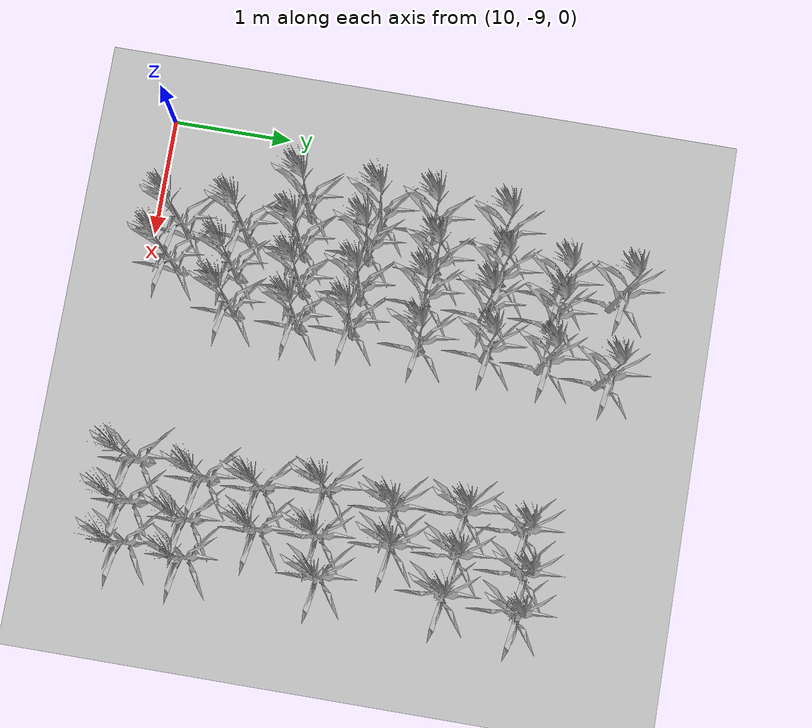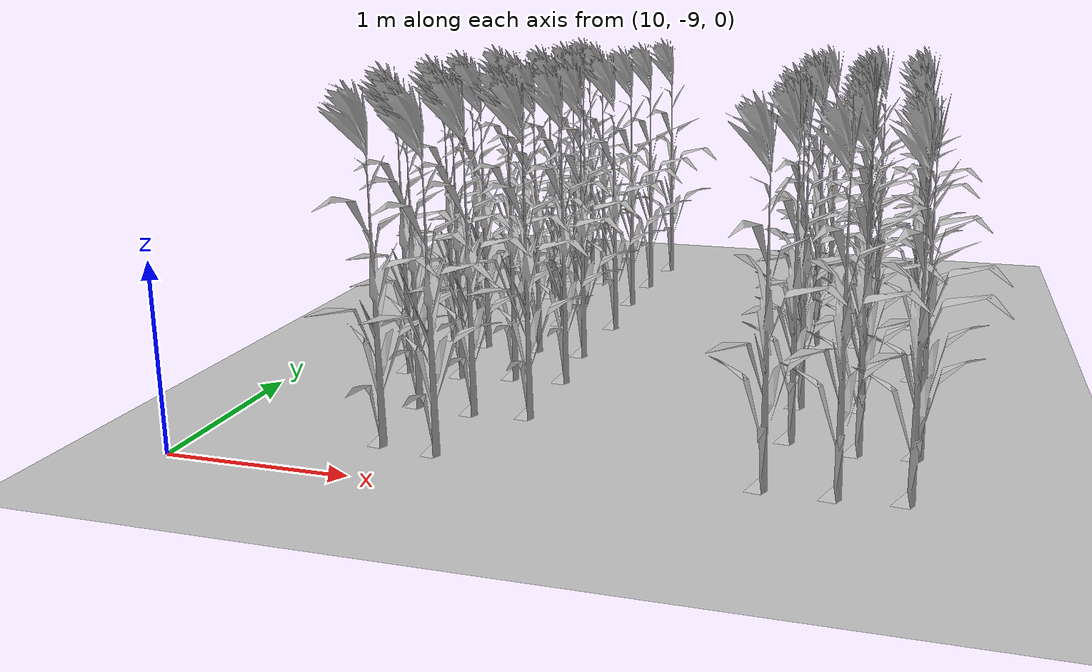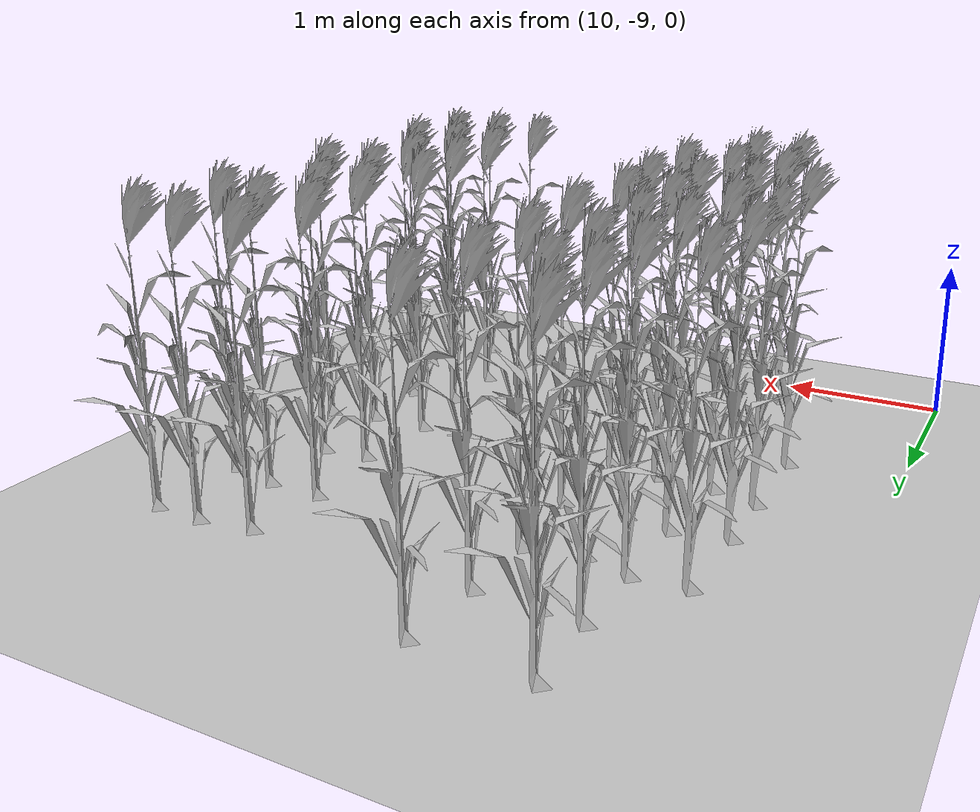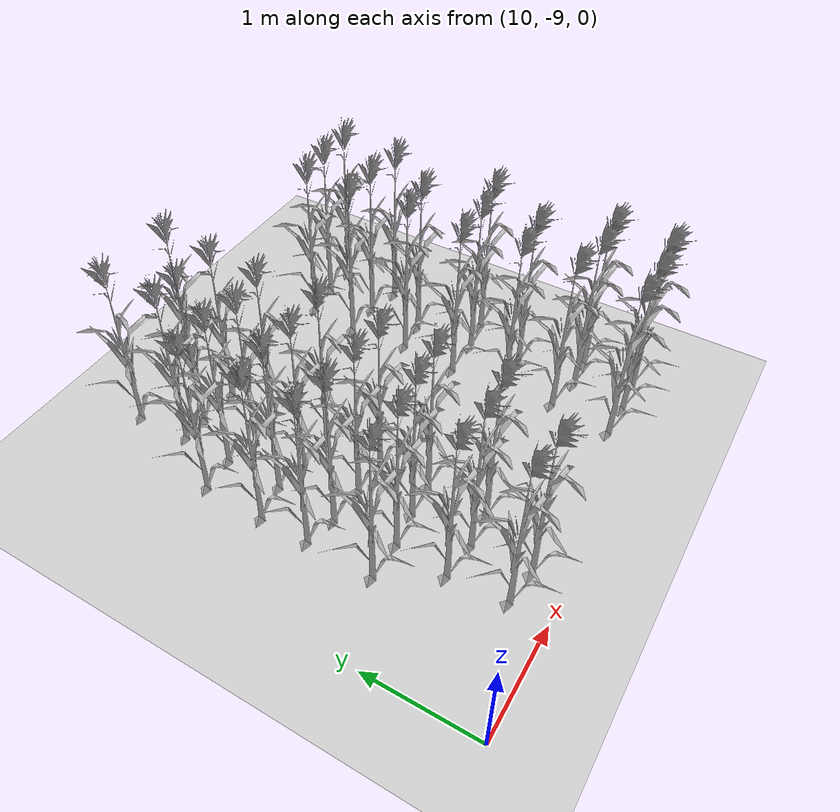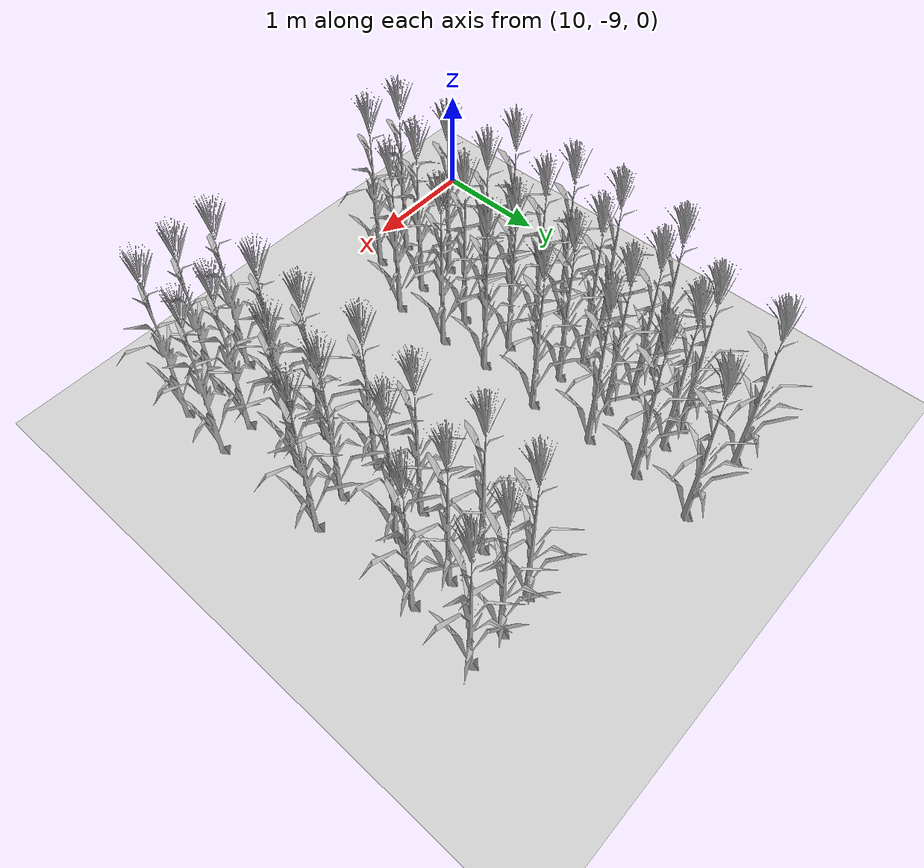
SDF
<sdf version="1.7">
 <world name="farmland_world">
  <model name="ground_plane">
   <static>1</static>
   <link name="link">
    <collision name="collision">
     <geometry><plane><normal>0 0 1</normal><size>40.0 40.0</size></plane></geometry>
     <surface><friction><ode><mu>100</mu><mu2>50</mu2></ode></friction></surface>
    </collision>
    <visual name="visual">
     <cast_shadows>0</cast_shadows>
     <geometry><plane><normal>0 0 1</normal><size>40.0 40.0</size></plane></geometry>
     <material>
      <script><uri>file://media/materials/scripts/gazebo.material</uri><name>Gazebo/Grey</name></script>
     </material>
    </visual>
   </link>
  </model>
  <model name="tree_3_1271">
   <static>1</static>
   <link name="link">
    <collision name="collision">
     <geometry><mesh><uri>model://Corn_low_poly/corn.obj</uri><scale>1 1 1</scale></mesh></geometry>
     <surface><friction><ode><mu>100</mu><mu2>50</mu2></ode></friction></surface>
    </collision>
    <visual name="visual">
     <geometry><mesh><uri>model://Corn_low_poly/corn.obj</uri><scale>1 1 1</scale></mesh></geometry>
    </visual>
   </link>
   <pose>10.715973302232335 -6.062941557962173 0 0 0 0</pose>
  </model>
  <model name="tree_3_1272">
   <static>1</static>
   <link name="link">
    <collision name="collision">
     <geometry><mesh><uri>model://Corn_low_poly/corn.obj</uri><scale>1 1 1</scale></mesh></geometry>
     <surface><friction><ode><mu>100</mu><mu2>50</mu2></ode></friction></surface>
    </collision>
    <visual name="visual">
     <geometry><mesh><uri>model://Corn_low_poly/corn.obj</uri><scale>1 1 1</scale></mesh></geometry>
    </visual>
   </link>
   <pose>10.696346135817876 -6.631069493272226 0 0 0 0</pose>
  </model>
  <model name="tree_3_1273">
   <static>1</static>
   <link name="link">
    <collision name="collision">
     <geometry><mesh><uri>model://Corn_low_poly/corn.obj</uri><scale>1 1 1</scale></mesh></geometry>
     <surface><friction><ode><mu>100</mu><mu2>50</mu2></ode></friction></surface>
    </collision>
    <visual name="visual">
     <geometry><mesh><uri>model://Corn_low_poly/corn.obj</uri><scale>1 1 1</scale></mesh></geometry>
    </visual>
   </link>
   <pose>10.699100713637986 -7.07209844592708 0 0 0 0</pose>
  </model>
  <model name="tree_3_1274">
   <static>1</static>
   <link name="link">
    <collision name="collision">
     <geometry><mesh><uri>model://Corn_low_poly/corn.obj</uri><scale>1 1 1</scale></mesh></geometry>
     <surface><friction><ode><mu>100</mu><mu2>50</mu2></ode></friction></surface>
    </collision>
    <visual name="visual">
     <geometry><mesh><uri>model://Corn_low_poly/corn.obj</uri><scale>1 1 1</scale></mesh></geometry>
    </visual>
   </link>
   <pose>10.687475974927512 -7.6755239275403495 0 0 0 0</pose>
  </model>
  <model name="tree_3_1295">
   <static>1</static>
   <link name="link">
    <collision name="collision">
     <geometry><mesh><uri>model://Corn_low_poly/corn.obj</uri><scale>1 1 1</scale></mesh></geometry>
     <surface><friction><ode><mu>100</mu><mu2>50</mu2></ode></friction></surface>
    </collision>
    <visual name="visual">
     <geometry><mesh><uri>model://Corn_low_poly/corn.obj</uri><scale>1 1 1</scale></mesh></geometry>
    </visual>
   </link>
   <pose>11.02900341646961 -5.060245639129506 0 0 0 0</pose>
  </model>
  <model name="tree_3_1296">
   <static>1</static>
   <link name="link">
    <collision name="collision">
     <geometry><mesh><uri>model://Corn_low_poly/corn.obj</uri><scale>1 1 1</scale></mesh></geometry>
     <surface><friction><ode><mu>100</mu><mu2>50</mu2></ode></friction></surface>
    </collision>
    <visual name="visual">
     <geometry><mesh><uri>model://Corn_low_poly/corn.obj</uri><scale>1 1 1</scale></mesh></geometry>
    </visual>
   </link>
   <pose>11.047884732187825 -5.556681931188784 0 0 0 0</pose>
  </model>
  <model name="tree_3_1297">
   <static>1</static>
   <link name="link">
    <collision name="collision">
     <geometry><mesh><uri>model://Corn_low_poly/corn.obj</uri><scale>1 1 1</scale></mesh></geometry>
     <surface><friction><ode><mu>100</mu><mu2>50</mu2></ode></friction></surface>
    </collision>
    <visual name="visual">
     <geometry><mesh><uri>model://Corn_low_poly/corn.obj</uri><scale>1 1 1</scale></mesh></geometry>
    </visual>
   </link>
   <pose>11.030979815447965 -6.036957130357867 0 0 0 0</pose>
  </model>
  <model name="tree_3_1298">
   <static>1</static>
   <link name="link">
    <collision name="collision">
     <geometry><mesh><uri>model://Corn_low_poly/corn.obj</uri><scale>1 1 1</scale></mesh></geometry>
     <surface><friction><ode><mu>100</mu><mu2>50</mu2></ode></friction></surface>
    </collision>
    <visual name="visual">
     <geometry><mesh><uri>model://Corn_low_poly/corn.obj</uri><scale>1 1 1</scale></mesh></geometry>
    </visual>
   </link>
   <pose>11.019836505396405 -6.566881701549886 0 0 0 0</pose>
  </model>
  <model name="tree_3_1299">
   <static>1</static>
   <link name="link">
    <collision name="collision">
     <geometry><mesh><uri>model://Corn_low_poly/corn.obj</uri><scale>1 1 1</scale></mesh></geometry>
     <surface><friction><ode><mu>100</mu><mu2>50</mu2></ode></friction></surface>
    </collision>
    <visual name="visual">
     <geometry><mesh><uri>model://Corn_low_poly/corn.obj</uri><scale>1 1 1</scale></mesh></geometry>
    </visual>
   </link>
   <pose>10.972054417032606 -7.138747380279613 0 0 0 0</pose>
  </model>
  <model name="tree_3_1300">
   <static>1</static>
   <link name="link">
    <collision name="collision">
     <geometry><mesh><uri>model://Corn_low_poly/corn.obj</uri><scale>1 1 1</scale></mesh></geometry>
     <surface><friction><ode><mu>100</mu><mu2>50</mu2></ode></friction></surface>
    </collision>
    <visual name="visual">
     <geometry><mesh><uri>model://Corn_low_poly/corn.obj</uri><scale>1 1 1</scale></mesh></geometry>
    </visual>
   </link>
   <pose>11.029528156796848 -7.680201163120341 0 0 0 0</pose>
  </model>
  <model name="tree_3_1301">
   <static>1</static>
   <link name="link">
    <collision name="collision">
     <geometry><mesh><uri>model://Corn_low_poly/corn.obj</uri><scale>1 1 1</scale></mesh></geometry>
     <surface><friction><ode><mu>100</mu><mu2>50</mu2></ode></friction></surface>
    </collision>
    <visual name="visual">
     <geometry><mesh><uri>model://Corn_low_poly/corn.obj</uri><scale>1 1 1</scale></mesh></geometry>
    </visual>
   </link>
   <pose>10.9826412308249 -8.149734783488928 0 0 0 0</pose>
  </model>
  <model name="tree_3_1302">
   <static>1</static>
   <link name="link">
    <collision name="collision">
     <geometry><mesh><uri>model://Corn_low_poly/corn.obj</uri><scale>1 1 1</scale></mesh></geometry>
     <surface><friction><ode><mu>100</mu><mu2>50</mu2></ode></friction></surface>
    </collision>
    <visual name="visual">
     <geometry><mesh><uri>model://Corn_low_poly/corn.obj</uri><scale>1 1 1</scale></mesh></geometry>
    </visual>
   </link>
   <pose>11.024611460518836 -8.6517135607605 0 0 0 0</pose>
  </model>
  <model name="tree_3_1322">
   <static>1</static>
   <link name="link">
    <collision name="collision">
     <geometry><mesh><uri>model://Corn_low_poly/corn.obj</uri><scale>1 1 1</scale></mesh></geometry>
     <surface><friction><ode><mu>100</mu><mu2>50</mu2></ode></friction></surface>
    </collision>
    <visual name="visual">
     <geometry><mesh><uri>model://Corn_low_poly/corn.obj</uri><scale>1 1 1</scale></mesh></geometry>
    </visual>
   </link>
   <pose>11.283447311554301 -5.562702039313058 0 0 0 0</pose>
  </model>
  <model name="tree_3_1323">
   <static>1</static>
   <link name="link">
    <collision name="collision">
     <geometry><mesh><uri>model://Corn_low_poly/corn.obj</uri><scale>1 1 1</scale></mesh></geometry>
     <surface><friction><ode><mu>100</mu><mu2>50</mu2></ode></friction></surface>
    </collision>
    <visual name="visual">
     <geometry><mesh><uri>model://Corn_low_poly/corn.obj</uri><scale>1 1 1</scale></mesh></geometry>
    </visual>
   </link>
   <pose>11.306034911808867 -6.108912075217409 0 0 0 0</pose>
  </model>
  <model name="tree_3_1324">
   <static>1</static>
   <link name="link">
    <collision name="collision">
     <geometry><mesh><uri>model://Corn_low_poly/corn.obj</uri><scale>1 1 1</scale></mesh></geometry>
     <surface><friction><ode><mu>100</mu><mu2>50</mu2></ode></friction></surface>
    </collision>
    <visual name="visual">
     <geometry><mesh><uri>model://Corn_low_poly/corn.obj</uri><scale>1 1 1</scale></mesh></geometry>
    </visual>
   </link>
   <pose>11.296172679830788 -6.612540203653892 0 0 0 0</pose>
  </model>
  <model name="tree_3_1325">
   <static>1</static>
   <link name="link">
    <collision name="collision">
     <geometry><mesh><uri>model://Corn_low_poly/corn.obj</uri><scale>1 1 1</scale></mesh></geometry>
     <surface><friction><ode><mu>100</mu><mu2>50</mu2></ode></friction></surface>
    </collision>
    <visual name="visual">
     <geometry><mesh><uri>model://Corn_low_poly/corn.obj</uri><scale>1 1 1</scale></mesh></geometry>
    </visual>
   </link>
   <pose>11.320546794286743 -7.147129103248172 0 0 0 0</pose>
  </model>
  <model name="tree_3_1326">
   <static>1</static>
   <link name="link">
    <collision name="collision">
     <geometry><mesh><uri>model://Corn_low_poly/corn.obj</uri><scale>1 1 1</scale></mesh></geometry>
     <surface><friction><ode><mu>100</mu><mu2>50</mu2></ode></friction></surface>
    </collision>
    <visual name="visual">
     <geometry><mesh><uri>model://Corn_low_poly/corn.obj</uri><scale>1 1 1</scale></mesh></geometry>
    </visual>
   </link>
   <pose>11.346045859113557 -7.635890848481162 0 0 0 0</pose>
  </model>
  <model name="tree_3_1327">
   <static>1</static>
   <link name="link">
    <collision name="collision">
     <geometry><mesh><uri>model://Corn_low_poly/corn.obj</uri><scale>1 1 1</scale></mesh></geometry>
     <surface><friction><ode><mu>100</mu><mu2>50</mu2></ode></friction></surface>
    </collision>
    <visual name="visual">
     <geometry><mesh><uri>model://Corn_low_poly/corn.obj</uri><scale>1 1 1</scale></mesh></geometry>
    </visual>
   </link>
   <pose>11.316733623569121 -8.180853601139638 0 0 0 0</pose>
  </model>
  <model name="tree_3_1328">
   <static>1</static>
   <link name="link">
    <collision name="collision">
     <geometry><mesh><uri>model://Corn_low_poly/corn.obj</uri><scale>1 1 1</scale></mesh></geometry>
     <surface><friction><ode><mu>100</mu><mu2>50</mu2></ode></friction></surface>
    </collision>
    <visual name="visual">
     <geometry><mesh><uri>model://Corn_low_poly/corn.obj</uri><scale>1 1 1</scale></mesh></geometry>
    </visual>
   </link>
   <pose>11.333684469656706 -8.689734685682648 0 0 0 0</pose>
  </model>
  <model name="tree_3_1347">
   <static>1</static>
   <link name="link">
    <collision name="collision">
     <geometry><mesh><uri>model://Corn_low_poly/corn.obj</uri><scale>1 1 1</scale></mesh></geometry>
     <surface><friction><ode><mu>100</mu><mu2>50</mu2></ode></friction></surface>
    </collision>
    <visual name="visual">
     <geometry><mesh><uri>model://Corn_low_poly/corn.obj</uri><scale>1 1 1</scale></mesh></geometry>
    </visual>
   </link>
   <pose>11.705725708585245 -5.079147408882568 0 0 0 0</pose>
  </model>
  <model name="tree_3_1348">
   <static>1</static>
   <link name="link">
    <collision name="collision">
     <geometry><mesh><uri>model://Corn_low_poly/corn.obj</uri><scale>1 1 1</scale></mesh></geometry>
     <surface><friction><ode><mu>100</mu><mu2>50</mu2></ode></friction></surface>
    </collision>
    <visual name="visual">
     <geometry><mesh><uri>model://Corn_low_poly/corn.obj</uri><scale>1 1 1</scale></mesh></geometry>
    </visual>
   </link>
   <pose>11.65569335498647 -5.576412970495114 0 0 0 0</pose>
  </model>
  <model name="tree_3_1349">
   <static>1</static>
   <link name="link">
    <collision name="collision">
     <geometry><mesh><uri>model://Corn_low_poly/corn.obj</uri><scale>1 1 1</scale></mesh></geometry>
     <surface><friction><ode><mu>100</mu><mu2>50</mu2></ode></friction></surface>
    </collision>
    <visual name="visual">
     <geometry><mesh><uri>model://Corn_low_poly/corn.obj</uri><scale>1 1 1</scale></mesh></geometry>
    </visual>
   </link>
   <pose>11.636458876170574 -6.048160206916727 0 0 0 0</pose>
  </model>
  <model name="tree_3_1350">
   <static>1</static>
   <link name="link">
    <collision name="collision">
     <geometry><mesh><uri>model://Corn_low_poly/corn.obj</uri><scale>1 1 1</scale></mesh></geometry>
     <surface><friction><ode><mu>100</mu><mu2>50</mu2></ode></friction></surface>
    </collision>
    <visual name="visual">
     <geometry><mesh><uri>model://Corn_low_poly/corn.obj</uri><scale>1 1 1</scale></mesh></geometry>
    </visual>
   </link>
   <pose>11.665987556101557 -6.599597161252061 0 0 0 0</pose>
  </model>
  <model name="tree_3_1351">
   <static>1</static>
   <link name="link">
    <collision name="collision">
     <geometry><mesh><uri>model://Corn_low_poly/corn.obj</uri><scale>1 1 1</scale></mesh></geometry>
     <surface><friction><ode><mu>100</mu><mu2>50</mu2></ode></friction></surface>
    </collision>
    <visual name="visual">
     <geometry><mesh><uri>model://Corn_low_poly/corn.obj</uri><scale>1 1 1</scale></mesh></geometry>
    </visual>
   </link>
   <pose>11.620838318677702 -7.166715513804781 0 0 0 0</pose>
  </model>
  <model name="tree_3_1352">
   <static>1</static>
   <link name="link">
    <collision name="collision">
     <geometry><mesh><uri>model://Corn_low_poly/corn.obj</uri><scale>1 1 1</scale></mesh></geometry>
     <surface><friction><ode><mu>100</mu><mu2>50</mu2></ode></friction></surface>
    </collision>
    <visual name="visual">
     <geometry><mesh><uri>model://Corn_low_poly/corn.obj</uri><scale>1 1 1</scale></mesh></geometry>
    </visual>
   </link>
   <pose>11.650793440453855 -7.610807723232968 0 0 0 0</pose>
  </model>
  <model name="tree_3_1353">
   <static>1</static>
   <link name="link">
    <collision name="collision">
     <geometry><mesh><uri>model://Corn_low_poly/corn.obj</uri><scale>1 1 1</scale></mesh></geometry>
     <surface><friction><ode><mu>100</mu><mu2>50</mu2></ode></friction></surface>
    </collision>
    <visual name="visual">
     <geometry><mesh><uri>model://Corn_low_poly/corn.obj</uri><scale>1 1 1</scale></mesh></geometry>
    </visual>
   </link>
   <pose>11.627797710125865 -8.151802382588755 0 0 0 0</pose>
  </model>
  <model name="tree_3_1374">
   <static>1</static>
   <link name="link">
    <collision name="collision">
     <geometry><mesh><uri>model://Corn_low_poly/corn.obj</uri><scale>1 1 1</scale></mesh></geometry>
     <surface><friction><ode><mu>100</mu><mu2>50</mu2></ode></friction></surface>
    </collision>
    <visual name="visual">
     <geometry><mesh><uri>model://Corn_low_poly/corn.obj</uri><scale>1 1 1</scale></mesh></geometry>
    </visual>
   </link>
   <pose>13.015713097363054 -5.554787554174775 0 0 0 0</pose>
  </model>
  <model name="tree_3_1375">
   <static>1</static>
   <link name="link">
    <collision name="collision">
     <geometry><mesh><uri>model://Corn_low_poly/corn.obj</uri><scale>1 1 1</scale></mesh></geometry>
     <surface><friction><ode><mu>100</mu><mu2>50</mu2></ode></friction></surface>
    </collision>
    <visual name="visual">
     <geometry><mesh><uri>model://Corn_low_poly/corn.obj</uri><scale>1 1 1</scale></mesh></geometry>
    </visual>
   </link>
   <pose>12.953531662741234 -6.036507251992887 0 0 0 0</pose>
  </model>
  <model name="tree_3_1376">
   <static>1</static>
   <link name="link">
    <collision name="collision">
     <geometry><mesh><uri>model://Corn_low_poly/corn.obj</uri><scale>1 1 1</scale></mesh></geometry>
     <surface><friction><ode><mu>100</mu><mu2>50</mu2></ode></friction></surface>
    </collision>
    <visual name="visual">
     <geometry><mesh><uri>model://Corn_low_poly/corn.obj</uri><scale>1 1 1</scale></mesh></geometry>
    </visual>
   </link>
   <pose>13.014175743301545 -6.592854848923844 0 0 0 0</pose>
  </model>
  <model name="tree_3_1377">
   <static>1</static>
   <link name="link">
    <collision name="collision">
     <geometry><mesh><uri>model://Corn_low_poly/corn.obj</uri><scale>1 1 1</scale></mesh></geometry>
     <surface><friction><ode><mu>100</mu><mu2>50</mu2></ode></friction></surface>
    </collision>
    <visual name="visual">
     <geometry><mesh><uri>model://Corn_low_poly/corn.obj</uri><scale>1 1 1</scale></mesh></geometry>
    </visual>
   </link>
   <pose>12.953028346706224 -7.136797779066301 0 0 0 0</pose>
  </model>
  <model name="tree_3_1378">
   <static>1</static>
   <link name="link">
    <collision name="collision">
     <geometry><mesh><uri>model://Corn_low_poly/corn.obj</uri><scale>1 1 1</scale></mesh></geometry>
     <surface><friction><ode><mu>100</mu><mu2>50</mu2></ode></friction></surface>
    </collision>
    <visual name="visual">
     <geometry><mesh><uri>model://Corn_low_poly/corn.obj</uri><scale>1 1 1</scale></mesh></geometry>
    </visual>
   </link>
   <pose>13.02776411541414 -7.650242454639994 0 0 0 0</pose>
  </model>
  <model name="tree_3_1379">
   <static>1</static>
   <link name="link">
    <collision name="collision">
     <geometry><mesh><uri>model://Corn_low_poly/corn.obj</uri><scale>1 1 1</scale></mesh></geometry>
     <surface><friction><ode><mu>100</mu><mu2>50</mu2></ode></friction></surface>
    </collision>
    <visual name="visual">
     <geometry><mesh><uri>model://Corn_low_poly/corn.obj</uri><scale>1 1 1</scale></mesh></geometry>
    </visual>
   </link>
   <pose>13.028071713568805 -8.111618778605918 0 0 0 0</pose>
  </model>
  <model name="tree_3_1380">
   <static>1</static>
   <link name="link">
    <collision name="collision">
     <geometry><mesh><uri>model://Corn_low_poly/corn.obj</uri><scale>1 1 1</scale></mesh></geometry>
     <surface><friction><ode><mu>100</mu><mu2>50</mu2></ode></friction></surface>
    </collision>
    <visual name="visual">
     <geometry><mesh><uri>model://Corn_low_poly/corn.obj</uri><scale>1 1 1</scale></mesh></geometry>
    </visual>
   </link>
   <pose>12.963333986307326 -8.670183316904586 0 0 0 0</pose>
  </model>
  <model name="tree_3_1400">
   <static>1</static>
   <link name="link">
    <collision name="collision">
     <geometry><mesh><uri>model://Corn_low_poly/corn.obj</uri><scale>1 1 1</scale></mesh></geometry>
     <surface><friction><ode><mu>100</mu><mu2>50</mu2></ode></friction></surface>
    </collision>
    <visual name="visual">
     <geometry><mesh><uri>model://Corn_low_poly/corn.obj</uri><scale>1 1 1</scale></mesh></geometry>
    </visual>
   </link>
   <pose>13.35287145116254 -5.511341983372862 0 0 0 0</pose>
  </model>
  <model name="tree_3_1401">
   <static>1</static>
   <link name="link">
    <collision name="collision">
     <geometry><mesh><uri>model://Corn_low_poly/corn.obj</uri><scale>1 1 1</scale></mesh></geometry>
     <surface><friction><ode><mu>100</mu><mu2>50</mu2></ode></friction></surface>
    </collision>
    <visual name="visual">
     <geometry><mesh><uri>model://Corn_low_poly/corn.obj</uri><scale>1 1 1</scale></mesh></geometry>
    </visual>
   </link>
   <pose>13.299983222818156 -6.0441757667487535 0 0 0 0</pose>
  </model>
  <model name="tree_3_1402">
   <static>1</static>
   <link name="link">
    <collision name="collision">
     <geometry><mesh><uri>model://Corn_low_poly/corn.obj</uri><scale>1 1 1</scale></mesh></geometry>
     <surface><friction><ode><mu>100</mu><mu2>50</mu2></ode></friction></surface>
    </collision>
    <visual name="visual">
     <geometry><mesh><uri>model://Corn_low_poly/corn.obj</uri><scale>1 1 1</scale></mesh></geometry>
    </visual>
   </link>
   <pose>13.308010365962712 -6.563033666398762 0 0 0 0</pose>
  </model>
  <model name="tree_3_1403">
   <static>1</static>
   <link name="link">
    <collision name="collision">
     <geometry><mesh><uri>model://Corn_low_poly/corn.obj</uri><scale>1 1 1</scale></mesh></geometry>
     <surface><friction><ode><mu>100</mu><mu2>50</mu2></ode></friction></surface>
    </collision>
    <visual name="visual">
     <geometry><mesh><uri>model://Corn_low_poly/corn.obj</uri><scale>1 1 1</scale></mesh></geometry>
    </visual>
   </link>
   <pose>13.327703940141058 -7.135928187165353 0 0 0 0</pose>
  </model>
  <model name="tree_3_1404">
   <static>1</static>
   <link name="link">
    <collision name="collision">
     <geometry><mesh><uri>model://Corn_low_poly/corn.obj</uri><scale>1 1 1</scale></mesh></geometry>
     <surface><friction><ode><mu>100</mu><mu2>50</mu2></ode></friction></surface>
    </collision>
    <visual name="visual">
     <geometry><mesh><uri>model://Corn_low_poly/corn.obj</uri><scale>1 1 1</scale></mesh></geometry>
    </visual>
   </link>
   <pose>13.357180691924714 -7.620496977907793 0 0 0 0</pose>
  </model>
  <model name="tree_3_1405">
   <static>1</static>
   <link name="link">
    <collision name="collision">
     <geometry><mesh><uri>model://Corn_low_poly/corn.obj</uri><scale>1 1 1</scale></mesh></geometry>
     <surface><friction><ode><mu>100</mu><mu2>50</mu2></ode></friction></surface>
    </collision>
    <visual name="visual">
     <geometry><mesh><uri>model://Corn_low_poly/corn.obj</uri><scale>1 1 1</scale></mesh></geometry>
    </visual>
   </link>
   <pose>13.371242818006857 -8.180413480056968 0 0 0 0</pose>
  </model>
  <model name="tree_3_1406">
   <static>1</static>
   <link name="link">
    <collision name="collision">
     <geometry><mesh><uri>model://Corn_low_poly/corn.obj</uri><scale>1 1 1</scale></mesh></geometry>
     <surface><friction><ode><mu>100</mu><mu2>50</mu2></ode></friction></surface>
    </collision>
    <visual name="visual">
     <geometry><mesh><uri>model://Corn_low_poly/corn.obj</uri><scale>1 1 1</scale></mesh></geometry>
    </visual>
   </link>
   <pose>13.30458606986952 -8.671621180724518 0 0 0 0</pose>
  </model>
  <model name="tree_3_1426">
   <static>1</static>
   <link name="link">
    <collision name="collision">
     <geometry><mesh><uri>model://Corn_low_poly/corn.obj</uri><scale>1 1 1</scale></mesh></geometry>
     <surface><friction><ode><mu>100</mu><mu2>50</mu2></ode></friction></surface>
    </collision>
    <visual name="visual">
     <geometry><mesh><uri>model://Corn_low_poly/corn.obj</uri><scale>1 1 1</scale></mesh></geometry>
    </visual>
   </link>
   <pose>13.66603414279391 -5.523258711789881 0 0 0 0</pose>
  </model>
  <model name="tree_3_1427">
   <static>1</static>
   <link name="link">
    <collision name="collision">
     <geometry><mesh><uri>model://Corn_low_poly/corn.obj</uri><scale>1 1 1</scale></mesh></geometry>
     <surface><friction><ode><mu>100</mu><mu2>50</mu2></ode></friction></surface>
    </collision>
    <visual name="visual">
     <geometry><mesh><uri>model://Corn_low_poly/corn.obj</uri><scale>1 1 1</scale></mesh></geometry>
    </visual>
   </link>
   <pose>13.620257126822175 -6.110164248836094 0 0 0 0</pose>
  </model>
  <model name="tree_3_1429">
   <static>1</static>
   <link name="link">
    <collision name="collision">
     <geometry><mesh><uri>model://Corn_low_poly/corn.obj</uri><scale>1 1 1</scale></mesh></geometry>
     <surface><friction><ode><mu>100</mu><mu2>50</mu2></ode></friction></surface>
    </collision>
    <visual name="visual">
     <geometry><mesh><uri>model://Corn_low_poly/corn.obj</uri><scale>1 1 1</scale></mesh></geometry>
    </visual>
   </link>
   <pose>13.64338527574866 -7.082031143448221 0 0 0 0</pose>
  </model>
  <model name="tree_3_1431">
   <static>1</static>
   <link name="link">
    <collision name="collision">
     <geometry><mesh><uri>model://Corn_low_poly/corn.obj</uri><scale>1 1 1</scale></mesh></geometry>
     <surface><friction><ode><mu>100</mu><mu2>50</mu2></ode></friction></surface>
    </collision>
    <visual name="visual">
     <geometry><mesh><uri>model://Corn_low_poly/corn.obj</uri><scale>1 1 1</scale></mesh></geometry>
    </visual>
   </link>
   <pose>13.667710374760496 -8.15463300381876 0 0 0 0</pose>
  </model>
  <model name="tree_3_1432">
   <static>1</static>
   <link name="link">
    <collision name="collision">
     <geometry><mesh><uri>model://Corn_low_poly/corn.obj</uri><scale>1 1 1</scale></mesh></geometry>
     <surface><friction><ode><mu>100</mu><mu2>50</mu2></ode></friction></surface>
    </collision>
    <visual name="visual">
     <geometry><mesh><uri>model://Corn_low_poly/corn.obj</uri><scale>1 1 1</scale></mesh></geometry>
    </visual>
   </link>
   <pose>13.630875149059312 -8.64371946578303 0 0 0 0</pose>
  </model>
 </world>
</sdf>
